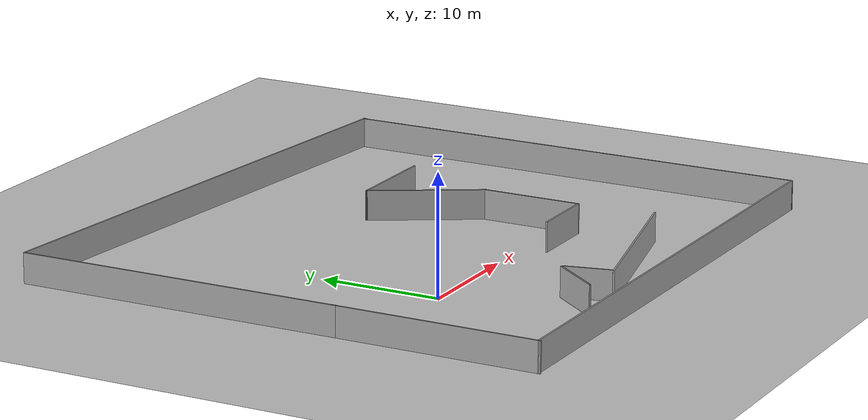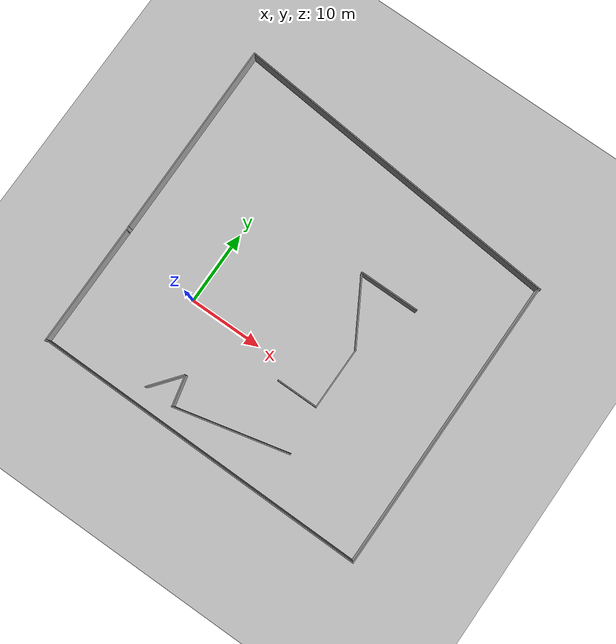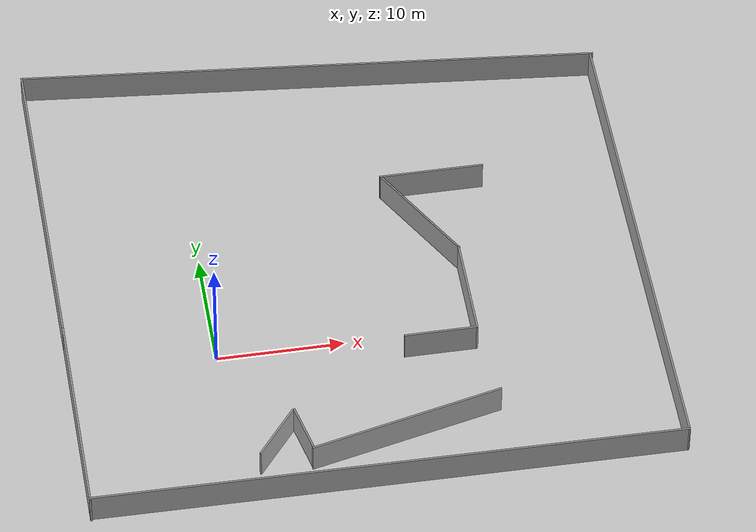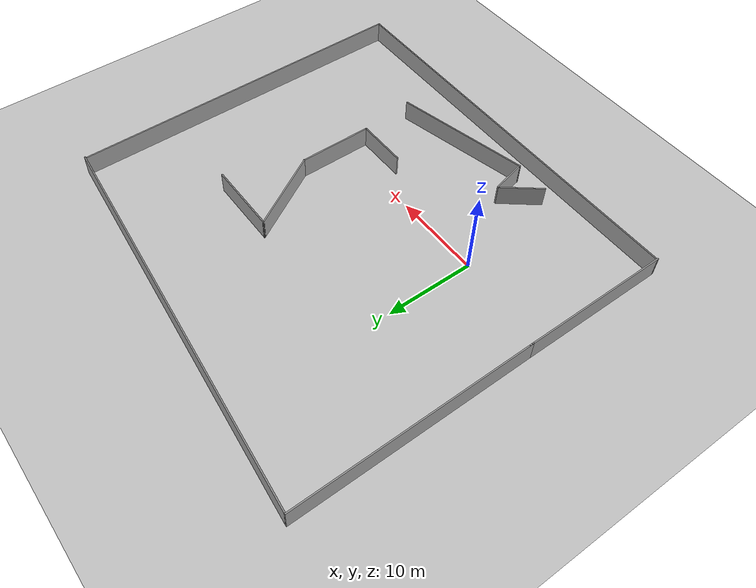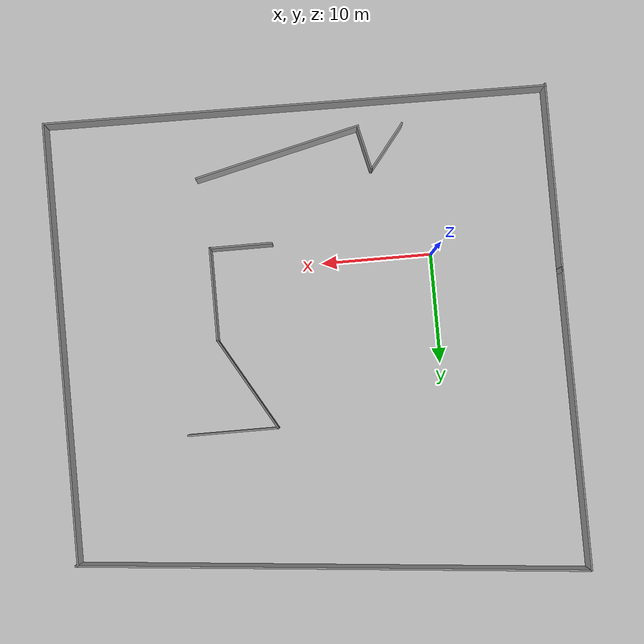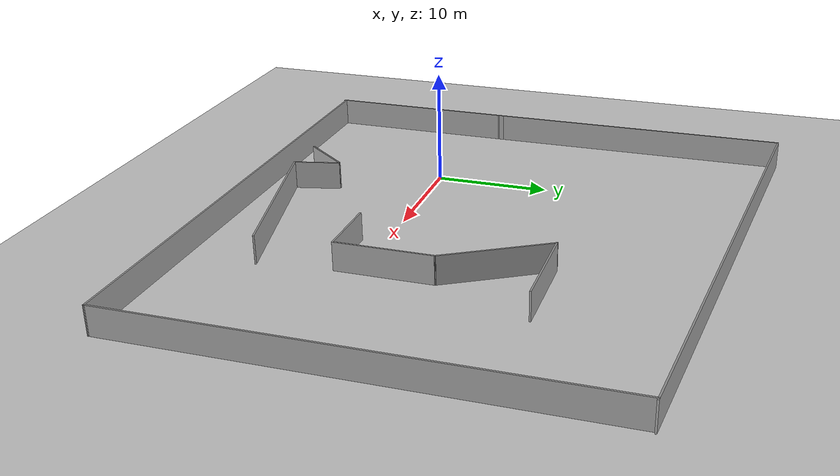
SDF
<sdf version="1.7">
 <world name="default">
  <light name="sun" type="directional">
   <pose>0 0 10 0 -0 0</pose>
   <diffuse>0.8 0.8 0.8 1</diffuse>
   <specular>0.2 0.2 0.2 1</specular>
   <attenuation>
    <range>1000</range>
    <constant>0.9</constant>
    <linear>0.01</linear>
    <quadratic>0.001</quadratic>
   </attenuation>
   <direction>-0.5 0.1 -0.9</direction>
   <spot><inner_angle>0</inner_angle><outer_angle>0</outer_angle><falloff>0</falloff></spot>
  </light>
  <model name="ground_plane">
   <static>1</static>
   <link name="link">
    <collision name="collision">
     <geometry><plane><normal>0 0 1</normal><size>100 100</size></plane></geometry>
     <surface><friction><ode><mu>100</mu><mu2>50</mu2></ode></friction></surface>
    </collision>
    <visual name="visual">
     <cast_shadows>0</cast_shadows>
     <geometry><plane><normal>0 0 1</normal><size>100 100</size></plane></geometry>
     <material>
      <script><uri>file://media/materials/scripts/gazebo.material</uri><name>Gazebo/Grey</name></script>
     </material>
    </visual>
   </link>
  </model>
  <gravity>0 0 -9.8</gravity>
  <magnetic_field>6e-06 2.3e-05 -4.2e-05</magnetic_field>
  <atmosphere type="adiabatic"/>
  <physics type="ode">
   <max_step_size>0.001</max_step_size>
   <real_time_factor>1</real_time_factor>
   <real_time_update_rate>1000</real_time_update_rate>
  </physics>
  <scene><ambient>0.4 0.4 0.4 1</ambient><background>0.7 0.7 0.7 1</background><shadows>1</shadows></scene>
  <audio><device>default</device></audio>
  <spherical_coordinates>
   <surface_model>EARTH_WGS84</surface_model>
   <latitude_deg>0</latitude_deg>
   <longitude_deg>0</longitude_deg>
   <elevation>0</elevation>
   <heading_deg>0</heading_deg>
  </spherical_coordinates>
  <model name="map1_test">
   <pose>11.3271 7.56567 0 0 -0 0</pose>
   <link name="Wall_1">
    <collision name="Wall_1_Collision">
     <geometry><box><size>27.4564 0.15 2.5</size></box></geometry>
     <pose>0 0 1.25 0 -0 0</pose>
    </collision>
    <visual name="Wall_1_Visual">
     <pose>0 0 1.25 0 -0 0</pose>
     <geometry><box><size>27.4564 0.15 2.5</size></box></geometry>
     <material>
      <script><uri>file://media/materials/scripts/gazebo.material</uri><name>Gazebo/Grey</name></script>
      <ambient>1 1 1 1</ambient>
     </material>
     <meta><layer>0</layer></meta>
    </visual>
    <pose>-22.8971 8.47576 0 0 -0 1.57533</pose>
   </link>
   <link name="Wall_10">
    <collision name="Wall_10_Collision">
     <geometry><box><size>8.25 0.15 2.5</size></box></geometry>
     <pose>0 0 1.25 0 -0 0</pose>
    </collision>
    <visual name="Wall_10_Visual">
     <pose>0 0 1.25 0 -0 0</pose>
     <geometry><box><size>8.25 0.15 2.5</size></box></geometry>
     <material>
      <script><uri>file://media/materials/scripts/gazebo.material</uri><name>Gazebo/Grey</name></script>
      <ambient>1 1 1 1</ambient>
     </material>
     <meta><layer>0</layer></meta>
    </visual>
    <pose>7.94386 7.05967 0 0 -0 0</pose>
   </link>
   <link name="Wall_12">
    <collision name="Wall_12_Collision">
     <geometry><box><size>4.9871 0.15 2.5</size></box></geometry>
     <pose>0 0 1.25 0 -0 0</pose>
    </collision>
    <visual name="Wall_12_Visual">
     <pose>0 0 1.25 0 -0 0</pose>
     <geometry><box><size>4.9871 0.15 2.5</size></box></geometry>
     <material>
      <script><uri>file://media/materials/scripts/gazebo.material</uri><name>Gazebo/Grey</name></script>
      <ambient>1 1 1 1</ambient>
     </material>
     <meta><layer>0</layer></meta>
    </visual>
    <pose>-8.07596 -17.5241 0 0 -0 0.903657</pose>
   </link>
   <link name="Wall_13">
    <collision name="Wall_13_Collision">
     <geometry><box><size>4.00431 0.15 2.5</size></box></geometry>
     <pose>0 0 1.25 0 -0 0</pose>
    </collision>
    <visual name="Wall_13_Visual">
     <pose>0 0 1.25 0 -0 0</pose>
     <geometry><box><size>4.00431 0.15 2.5</size></box></geometry>
     <material>
      <script><uri>file://media/materials/scripts/gazebo.material</uri><name>Gazebo/Grey</name></script>
      <ambient>1 1 1 1</ambient>
     </material>
     <meta><layer>0</layer></meta>
    </visual>
    <pose>-6.02381 -17.5022 0 0 -0 -1.34474</pose>
   </link>
   <link name="Wall_14">
    <collision name="Wall_14_Collision">
     <geometry><box><size>15.5333 0.15 2.5</size></box></geometry>
     <pose>0 0 1.25 0 -0 0</pose>
    </collision>
    <visual name="Wall_14_Visual">
     <pose>0 0 1.25 0 -0 0</pose>
     <geometry><box><size>15.5333 0.15 2.5</size></box></geometry>
     <material>
      <script><uri>file://media/materials/scripts/gazebo.material</uri><name>Gazebo/Grey</name></script>
      <ambient>1 1 1 1</ambient>
     </material>
     <meta><layer>0</layer></meta>
    </visual>
    <pose>1.8941 -17.7771 0 0 -0 0.231793</pose>
   </link>
   <link name="Wall_2">
    <collision name="Wall_2_Collision">
     <geometry><box><size>46.1025 0.15 2.5</size></box></geometry>
     <pose>0 0 1.25 0 -0 0</pose>
    </collision>
    <visual name="Wall_2_Visual">
     <pose>0 0 1.25 0 -0 0</pose>
     <geometry><box><size>46.1025 0.15 2.5</size></box></geometry>
     <material>
      <script><uri>file://media/materials/scripts/gazebo.material</uri><name>Gazebo/Grey</name></script>
      <ambient>1 1 1 1</ambient>
     </material>
     <meta><layer>0</layer></meta>
    </visual>
    <pose>0.078635 19.9633 0 0 -0 -0.094399</pose>
   </link>
   <link name="Wall_3">
    <collision name="Wall_3_Collision">
     <geometry><box><size>40.083 0.15 2.5</size></box></geometry>
     <pose>0 0 1.25 0 -0 0</pose>
    </collision>
    <visual name="Wall_3_Visual">
     <pose>0 0 1.25 0 -0 0</pose>
     <geometry><box><size>40.083 0.15 2.5</size></box></geometry>
     <material>
      <script><uri>file://media/materials/scripts/gazebo.material</uri><name>Gazebo/Grey</name></script>
      <ambient>1 1 1 1</ambient>
     </material>
     <meta><layer>0</layer></meta>
    </visual>
    <pose>22.7889 -2.16877 0 0 -0 -1.5708</pose>
   </link>
   <link name="Wall_4">
    <collision name="Wall_4_Collision">
     <geometry><box><size>45.7756 0.15 2.5</size></box></geometry>
     <pose>0 0 1.25 0 -0 0</pose>
    </collision>
    <visual name="Wall_4_Visual">
     <pose>0 0 1.25 0 -0 0</pose>
     <geometry><box><size>45.7756 0.15 2.5</size></box></geometry>
     <material>
      <script><uri>file://media/materials/scripts/gazebo.material</uri><name>Gazebo/Grey</name></script>
      <ambient>1 1 1 1</ambient>
     </material>
     <meta><layer>0</layer></meta>
    </visual>
    <pose>-0.023153 -21.9495 0 0 -0 3.13346</pose>
   </link>
   <link name="Wall_5">
    <collision name="Wall_5_Collision">
     <geometry><box><size>17.25 0.15 2.5</size></box></geometry>
     <pose>0 0 1.25 0 -0 0</pose>
    </collision>
    <visual name="Wall_5_Visual">
     <pose>0 0 1.25 0 -0 0</pose>
     <geometry><box><size>17.25 0.15 2.5</size></box></geometry>
     <material>
      <script><uri>file://media/materials/scripts/gazebo.material</uri><name>Gazebo/Grey</name></script>
      <ambient>1 1 1 1</ambient>
     </material>
     <meta><layer>0</layer></meta>
    </visual>
    <pose>-22.8352 -13.3376 0 0 -0 1.5708</pose>
   </link>
   <link name="Wall_7">
    <collision name="Wall_7_Collision">
     <geometry><box><size>5.75 0.15 2.5</size></box></geometry>
     <pose>0 0 1.25 0 -0 0</pose>
    </collision>
    <visual name="Wall_7_Visual">
     <pose>0 0 1.25 0 -0 0</pose>
     <geometry><box><size>5.75 0.15 2.5</size></box></geometry>
     <material>
      <script><uri>file://media/materials/scripts/gazebo.material</uri><name>Gazebo/Grey</name></script>
      <ambient>1 1 1 1</ambient>
     </material>
     <meta><layer>0</layer></meta>
    </visual>
    <pose>5.89386 -9.60418 0 0 -0 0</pose>
   </link>
   <link name="Wall_8">
    <collision name="Wall_8_Collision">
     <geometry><box><size>8.5 0.15 2.5</size></box></geometry>
     <pose>0 0 1.25 0 -0 0</pose>
    </collision>
    <visual name="Wall_8_Visual">
     <pose>0 0 1.25 0 -0 0</pose>
     <geometry><box><size>8.5 0.15 2.5</size></box></geometry>
     <material>
      <script><uri>file://media/materials/scripts/gazebo.material</uri><name>Gazebo/Grey</name></script>
      <ambient>1 1 1 1</ambient>
     </material>
     <meta><layer>0</layer></meta>
    </visual>
    <pose>8.69386 -5.42918 0 0 -0 1.5708</pose>
   </link>
   <link name="Wall_9">
    <collision name="Wall_9_Collision">
     <geometry><box><size>9.75 0.15 2.5</size></box></geometry>
     <pose>0 0 1.25 0 -0 0</pose>
    </collision>
    <visual name="Wall_9_Visual">
     <pose>0 0 1.25 0 -0 0</pose>
     <geometry><box><size>9.75 0.15 2.5</size></box></geometry>
     <material>
      <script><uri>file://media/materials/scripts/gazebo.material</uri><name>Gazebo/Grey</name></script>
      <ambient>1 1 1 1</ambient>
     </material>
     <meta><layer>0</layer></meta>
    </visual>
    <pose>6.29386 2.90275 0 0 -0 2.0944</pose>
   </link>
   <static>1</static>
  </model>
 </world>
</sdf>
